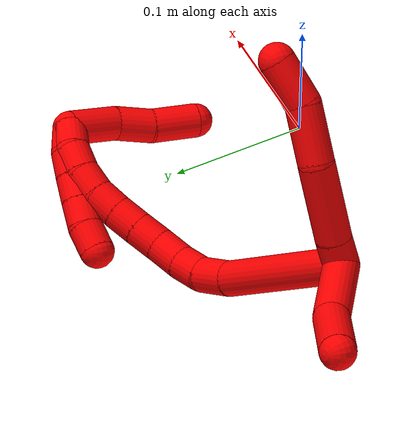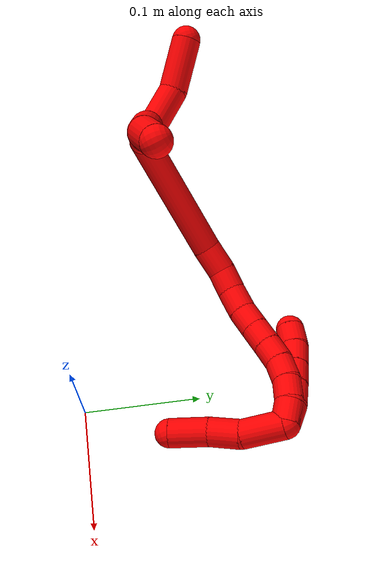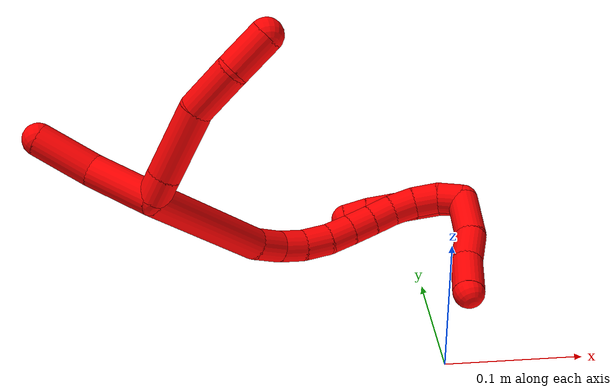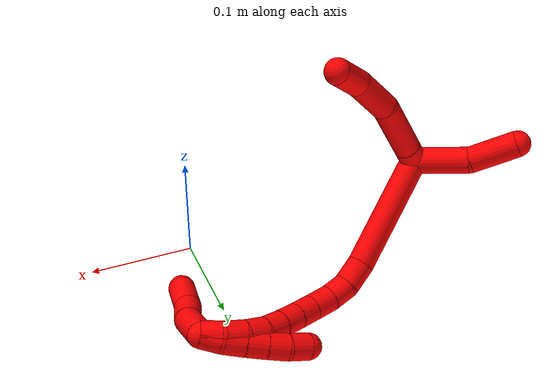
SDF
<sdf version="1.7">
 <world name="default">
  <model name="2">
   <static>0</static>
   <link name="2">
    <collision name="collision-cylinder-e_1_2_8">
     <pose>0.00959 0.001404 0.003354 -0.396489 1.20843 -0.275599</pose>
     <geometry><cylinder><radius>0.0125</radius><length>0.020512</length></cylinder></geometry>
     <surface>
      <friction><ode><mu>1.16</mu><mu2>1.16</mu2><slip1>0</slip1><slip2>0</slip2></ode></friction>
      <contact><ode><kp>1e+06</kp><kd>1</kd><max_vel>0</max_vel><min_depth>0.001</min_depth></ode></contact>
     </surface>
    </collision>
    <visual name="visual-cylinder-e_1_2_8">
     <pose>0.00959 0.001404 0.003354 -0.396489 1.20843 -0.275599</pose>
     <geometry><cylinder><radius>0.0125</radius><length>0.020512</length></cylinder></geometry>
     <material><ambient>1 0 0 1</ambient></material>
    </visual>
    <collision name="collision-cylinder-e_2_8_9">
     <pose>0.046082 0.006068 0.014529 -0.394901 1.26565 -0.291386</pose>
     <geometry><cylinder><radius>0.0125</radius><length>0.05641</length></cylinder></geometry>
     <surface>
      <friction><ode><mu>1.16</mu><mu2>1.16</mu2><slip1>0</slip1><slip2>0</slip2></ode></friction>
      <contact><ode><kp>1e+06</kp><kd>1</kd><max_vel>0</max_vel><min_depth>0.001</min_depth></ode></contact>
     </surface>
    </collision>
    <visual name="visual-cylinder-e_2_8_9">
     <pose>0.046082 0.006068 0.014529 -0.394901 1.26565 -0.291386</pose>
     <geometry><cylinder><radius>0.0125</radius><length>0.05641</length></cylinder></geometry>
     <material><ambient>1 0 0 1</ambient></material>
    </visual>
    <collision name="collision-cylinder-e_3_9_10">
     <pose>0.091816 0.015763 0.024302 -1.27629 1.22783 -0.963281</pose>
     <geometry><cylinder><radius>0.0125</radius><length>0.039993</length></cylinder></geometry>
     <surface>
      <friction><ode><mu>1.16</mu><mu2>1.16</mu2><slip1>0</slip1><slip2>0</slip2></ode></friction>
      <contact><ode><kp>1e+06</kp><kd>1</kd><max_vel>0</max_vel><min_depth>0.001</min_depth></ode></contact>
     </surface>
    </collision>
    <visual name="visual-cylinder-e_3_9_10">
     <pose>0.091816 0.015763 0.024302 -1.27629 1.22783 -0.963281</pose>
     <geometry><cylinder><radius>0.0125</radius><length>0.039993</length></cylinder></geometry>
     <material><ambient>1 0 0 1</ambient></material>
    </visual>
    <collision name="collision-cylinder-e_4_10_6">
     <pose>0.123912 0.030443 0.031707 -0.98643 0.930302 -0.527001</pose>
     <geometry><cylinder><radius>0.0125</radius><length>0.033084</length></cylinder></geometry>
     <surface>
      <friction><ode><mu>1.16</mu><mu2>1.16</mu2><slip1>0</slip1><slip2>0</slip2></ode></friction>
      <contact><ode><kp>1e+06</kp><kd>1</kd><max_vel>0</max_vel><min_depth>0.001</min_depth></ode></contact>
     </surface>
    </collision>
    <visual name="visual-cylinder-e_4_10_6">
     <pose>0.123912 0.030443 0.031707 -0.98643 0.930302 -0.527001</pose>
     <geometry><cylinder><radius>0.0125</radius><length>0.033084</length></cylinder></geometry>
     <material><ambient>1 0 0 1</ambient></material>
    </visual>
    <collision name="collision-cylinder-e_1_2_11">
     <pose>-0.009032 -0.016464 0.019003 0.713932 -0.344864 -0.129722</pose>
     <geometry><cylinder><radius>0.0125</radius><length>0.053431</length></cylinder></geometry>
     <surface>
      <friction><ode><mu>1.16</mu><mu2>1.16</mu2><slip1>0</slip1><slip2>0</slip2></ode></friction>
      <contact><ode><kp>1e+06</kp><kd>1</kd><max_vel>0</max_vel><min_depth>0.001</min_depth></ode></contact>
     </surface>
    </collision>
    <visual name="visual-cylinder-e_1_2_11">
     <pose>-0.009032 -0.016464 0.019003 0.713932 -0.344864 -0.129722</pose>
     <geometry><cylinder><radius>0.0125</radius><length>0.053431</length></cylinder></geometry>
     <material><ambient>1 0 0 1</ambient></material>
    </visual>
    <collision name="collision-cylinder-e_2_11_5">
     <pose>-0.020012 -0.051289 0.05219 0.913032 -0.083775 -0.041161</pose>
     <geometry><cylinder><radius>0.0125</radius><length>0.046569</length></cylinder></geometry>
     <surface>
      <friction><ode><mu>1.16</mu><mu2>1.16</mu2><slip1>0</slip1><slip2>0</slip2></ode></friction>
      <contact><ode><kp>1e+06</kp><kd>1</kd><max_vel>0</max_vel><min_depth>0.001</min_depth></ode></contact>
     </surface>
    </collision>
    <visual name="visual-cylinder-e_2_11_5">
     <pose>-0.020012 -0.051289 0.05219 0.913032 -0.083775 -0.041161</pose>
     <geometry><cylinder><radius>0.0125</radius><length>0.046569</length></cylinder></geometry>
     <material><ambient>1 0 0 1</ambient></material>
    </visual>
    <collision name="collision-cylinder-e_1_2_12">
     <pose>-0.021987 0.051128 0.002332 -1.52523 -0.405757 0.388135</pose>
     <geometry><cylinder><radius>0.0125</radius><length>0.111407</length></cylinder></geometry>
     <surface>
      <friction><ode><mu>1.16</mu><mu2>1.16</mu2><slip1>0</slip1><slip2>0</slip2></ode></friction>
      <contact><ode><kp>1e+06</kp><kd>1</kd><max_vel>0</max_vel><min_depth>0.001</min_depth></ode></contact>
     </surface>
    </collision>
    <visual name="visual-cylinder-e_1_2_12">
     <pose>-0.021987 0.051128 0.002332 -1.52523 -0.405757 0.388135</pose>
     <geometry><cylinder><radius>0.0125</radius><length>0.111407</length></cylinder></geometry>
     <material><ambient>1 0 0 1</ambient></material>
    </visual>
    <collision name="collision-cylinder-e_2_12_13">
     <pose>-0.046345 0.114649 0.006424 -1.4297 -0.187147 0.16256</pose>
     <geometry><cylinder><radius>0.0125</radius><length>0.025482</length></cylinder></geometry>
     <surface>
      <friction><ode><mu>1.16</mu><mu2>1.16</mu2><slip1>0</slip1><slip2>0</slip2></ode></friction>
      <contact><ode><kp>1e+06</kp><kd>1</kd><max_vel>0</max_vel><min_depth>0.001</min_depth></ode></contact>
     </surface>
    </collision>
    <visual name="visual-cylinder-e_2_12_13">
     <pose>-0.046345 0.114649 0.006424 -1.4297 -0.187147 0.16256</pose>
     <geometry><cylinder><radius>0.0125</radius><length>0.025482</length></cylinder></geometry>
     <material><ambient>1 0 0 1</ambient></material>
    </visual>
    <collision name="collision-cylinder-e_3_13_14">
     <pose>-0.047493 0.137297 0.008846 -1.5063 0.118411 -0.111026</pose>
     <geometry><cylinder><radius>0.0125</radius><length>0.020694</length></cylinder></geometry>
     <surface>
      <friction><ode><mu>1.16</mu><mu2>1.16</mu2><slip1>0</slip1><slip2>0</slip2></ode></friction>
      <contact><ode><kp>1e+06</kp><kd>1</kd><max_vel>0</max_vel><min_depth>0.001</min_depth></ode></contact>
     </surface>
    </collision>
    <visual name="visual-cylinder-e_3_13_14">
     <pose>-0.047493 0.137297 0.008846 -1.5063 0.118411 -0.111026</pose>
     <geometry><cylinder><radius>0.0125</radius><length>0.020694</length></cylinder></geometry>
     <material><ambient>1 0 0 1</ambient></material>
    </visual>
    <collision name="collision-cylinder-e_4_14_15">
     <pose>-0.042872 0.158073 0.011078 -1.42277 0.309175 -0.267035</pose>
     <geometry><cylinder><radius>0.0125</radius><length>0.022338</length></cylinder></geometry>
     <surface>
      <friction><ode><mu>1.16</mu><mu2>1.16</mu2><slip1>0</slip1><slip2>0</slip2></ode></friction>
      <contact><ode><kp>1e+06</kp><kd>1</kd><max_vel>0</max_vel><min_depth>0.001</min_depth></ode></contact>
     </surface>
    </collision>
    <visual name="visual-cylinder-e_4_14_15">
     <pose>-0.042872 0.158073 0.011078 -1.42277 0.309175 -0.267035</pose>
     <geometry><cylinder><radius>0.0125</radius><length>0.022338</length></cylinder></geometry>
     <material><ambient>1 0 0 1</ambient></material>
    </visual>
    <collision name="collision-cylinder-e_5_15_16">
     <pose>-0.035694 0.177477 0.015394 -1.27079 0.386194 -0.286402</pose>
     <geometry><cylinder><radius>0.0125</radius><length>0.02007</length></cylinder></geometry>
     <surface>
      <friction><ode><mu>1.16</mu><mu2>1.16</mu2><slip1>0</slip1><slip2>0</slip2></ode></friction>
      <contact><ode><kp>1e+06</kp><kd>1</kd><max_vel>0</max_vel><min_depth>0.001</min_depth></ode></contact>
     </surface>
    </collision>
    <visual name="visual-cylinder-e_5_15_16">
     <pose>-0.035694 0.177477 0.015394 -1.27079 0.386194 -0.286402</pose>
     <geometry><cylinder><radius>0.0125</radius><length>0.02007</length></cylinder></geometry>
     <material><ambient>1 0 0 1</ambient></material>
    </visual>
    <collision name="collision-cylinder-e_6_16_17">
     <pose>-0.027865 0.195066 0.020935 -1.2604 0.416826 -0.306108</pose>
     <geometry><cylinder><radius>0.0125</radius><length>0.020004</length></cylinder></geometry>
     <surface>
      <friction><ode><mu>1.16</mu><mu2>1.16</mu2><slip1>0</slip1><slip2>0</slip2></ode></friction>
      <contact><ode><kp>1e+06</kp><kd>1</kd><max_vel>0</max_vel><min_depth>0.001</min_depth></ode></contact>
     </surface>
    </collision>
    <visual name="visual-cylinder-e_6_16_17">
     <pose>-0.027865 0.195066 0.020935 -1.2604 0.416826 -0.306108</pose>
     <geometry><cylinder><radius>0.0125</radius><length>0.020004</length></cylinder></geometry>
     <material><ambient>1 0 0 1</ambient></material>
    </visual>
    <collision name="collision-cylinder-e_7_17_18">
     <pose>-0.019252 0.212266 0.026393 -1.26673 0.47379 -0.350906</pose>
     <geometry><cylinder><radius>0.0125</radius><length>0.020003</length></cylinder></geometry>
     <surface>
      <friction><ode><mu>1.16</mu><mu2>1.16</mu2><slip1>0</slip1><slip2>0</slip2></ode></friction>
      <contact><ode><kp>1e+06</kp><kd>1</kd><max_vel>0</max_vel><min_depth>0.001</min_depth></ode></contact>
     </surface>
    </collision>
    <visual name="visual-cylinder-e_7_17_18">
     <pose>-0.019252 0.212266 0.026393 -1.26673 0.47379 -0.350906</pose>
     <geometry><cylinder><radius>0.0125</radius><length>0.020003</length></cylinder></geometry>
     <material><ambient>1 0 0 1</ambient></material>
    </visual>
    <collision name="collision-cylinder-e_8_18_19">
     <pose>-0.00899 0.228943 0.029791 -1.48142 0.606324 -0.557174</pose>
     <geometry><cylinder><radius>0.0125</radius><length>0.020001</length></cylinder></geometry>
     <surface>
      <friction><ode><mu>1.16</mu><mu2>1.16</mu2><slip1>0</slip1><slip2>0</slip2></ode></friction>
      <contact><ode><kp>1e+06</kp><kd>1</kd><max_vel>0</max_vel><min_depth>0.001</min_depth></ode></contact>
     </surface>
    </collision>
    <visual name="visual-cylinder-e_8_18_19">
     <pose>-0.00899 0.228943 0.029791 -1.48142 0.606324 -0.557174</pose>
     <geometry><cylinder><radius>0.0125</radius><length>0.020001</length></cylinder></geometry>
     <material><ambient>1 0 0 1</ambient></material>
    </visual>
    <collision name="collision-cylinder-e_9_19_20">
     <pose>0.002666 0.245012 0.028988 -1.76323 0.638082 -0.762563</pose>
     <geometry><cylinder><radius>0.0125</radius><length>0.02</length></cylinder></geometry>
     <surface>
      <friction><ode><mu>1.16</mu><mu2>1.16</mu2><slip1>0</slip1><slip2>0</slip2></ode></friction>
      <contact><ode><kp>1e+06</kp><kd>1</kd><max_vel>0</max_vel><min_depth>0.001</min_depth></ode></contact>
     </surface>
    </collision>
    <visual name="visual-cylinder-e_9_19_20">
     <pose>0.002666 0.245012 0.028988 -1.76323 0.638082 -0.762563</pose>
     <geometry><cylinder><radius>0.0125</radius><length>0.02</length></cylinder></geometry>
     <material><ambient>1 0 0 1</ambient></material>
    </visual>
    <collision name="collision-cylinder-e_10_20_1">
     <pose>0.013742 0.260304 0.023103 -2.10167 0.537514 -0.896787</pose>
     <geometry><cylinder><radius>0.0125</radius><length>0.02</length></cylinder></geometry>
     <surface>
      <friction><ode><mu>1.16</mu><mu2>1.16</mu2><slip1>0</slip1><slip2>0</slip2></ode></friction>
      <contact><ode><kp>1e+06</kp><kd>1</kd><max_vel>0</max_vel><min_depth>0.001</min_depth></ode></contact>
     </surface>
    </collision>
    <visual name="visual-cylinder-e_10_20_1">
     <pose>0.013742 0.260304 0.023103 -2.10167 0.537514 -0.896787</pose>
     <geometry><cylinder><radius>0.0125</radius><length>0.02</length></cylinder></geometry>
     <material><ambient>1 0 0 1</ambient></material>
    </visual>
    <collision name="collision-cylinder-e_1_1_21">
     <pose>0.012045 0.26207 0.023413 0.880614 -0.750079 -0.366794</pose>
     <geometry><cylinder><radius>0.0125</radius><length>0.02</length></cylinder></geometry>
     <surface>
      <friction><ode><mu>1.16</mu><mu2>1.16</mu2><slip1>0</slip1><slip2>0</slip2></ode></friction>
      <contact><ode><kp>1e+06</kp><kd>1</kd><max_vel>0</max_vel><min_depth>0.001</min_depth></ode></contact>
     </surface>
    </collision>
    <visual name="visual-cylinder-e_1_1_21">
     <pose>0.012045 0.26207 0.023413 0.880614 -0.750079 -0.366794</pose>
     <geometry><cylinder><radius>0.0125</radius><length>0.02</length></cylinder></geometry>
     <material><ambient>1 0 0 1</ambient></material>
    </visual>
    <collision name="collision-cylinder-e_2_21_22">
     <pose>-0.001667 0.249689 0.030724 1.19573 -0.76081 -0.531752</pose>
     <geometry><cylinder><radius>0.0125</radius><length>0.02</length></cylinder></geometry>
     <surface>
      <friction><ode><mu>1.16</mu><mu2>1.16</mu2><slip1>0</slip1><slip2>0</slip2></ode></friction>
      <contact><ode><kp>1e+06</kp><kd>1</kd><max_vel>0</max_vel><min_depth>0.001</min_depth></ode></contact>
     </surface>
    </collision>
    <visual name="visual-cylinder-e_2_21_22">
     <pose>-0.001667 0.249689 0.030724 1.19573 -0.76081 -0.531752</pose>
     <geometry><cylinder><radius>0.0125</radius><length>0.02</length></cylinder></geometry>
     <material><ambient>1 0 0 1</ambient></material>
    </visual>
    <collision name="collision-cylinder-e_3_22_23">
     <pose>-0.015352 0.236025 0.035817 1.23202 -0.746422 -0.540797</pose>
     <geometry><cylinder><radius>0.0125</radius><length>0.02</length></cylinder></geometry>
     <surface>
      <friction><ode><mu>1.16</mu><mu2>1.16</mu2><slip1>0</slip1><slip2>0</slip2></ode></friction>
      <contact><ode><kp>1e+06</kp><kd>1</kd><max_vel>0</max_vel><min_depth>0.001</min_depth></ode></contact>
     </surface>
    </collision>
    <visual name="visual-cylinder-e_3_22_23">
     <pose>-0.015352 0.236025 0.035817 1.23202 -0.746422 -0.540797</pose>
     <geometry><cylinder><radius>0.0125</radius><length>0.02</length></cylinder></geometry>
     <material><ambient>1 0 0 1</ambient></material>
    </visual>
    <collision name="collision-cylinder-e_4_23_24">
     <pose>-0.028785 0.22201 0.040617 1.24947 -0.726574 -0.53511</pose>
     <geometry><cylinder><radius>0.0125</radius><length>0.02</length></cylinder></geometry>
     <surface>
      <friction><ode><mu>1.16</mu><mu2>1.16</mu2><slip1>0</slip1><slip2>0</slip2></ode></friction>
      <contact><ode><kp>1e+06</kp><kd>1</kd><max_vel>0</max_vel><min_depth>0.001</min_depth></ode></contact>
     </surface>
    </collision>
    <visual name="visual-cylinder-e_4_23_24">
     <pose>-0.028785 0.22201 0.040617 1.24947 -0.726574 -0.53511</pose>
     <geometry><cylinder><radius>0.0125</radius><length>0.02</length></cylinder></geometry>
     <material><ambient>1 0 0 1</ambient></material>
    </visual>
    <collision name="collision-cylinder-e_5_24_4">
     <pose>-0.041804 0.20723 0.043478 1.50588 -0.691333 -0.650943</pose>
     <geometry><cylinder><radius>0.0125</radius><length>0.02</length></cylinder></geometry>
     <surface>
      <friction><ode><mu>1.16</mu><mu2>1.16</mu2><slip1>0</slip1><slip2>0</slip2></ode></friction>
      <contact><ode><kp>1e+06</kp><kd>1</kd><max_vel>0</max_vel><min_depth>0.001</min_depth></ode></contact>
     </surface>
    </collision>
    <visual name="visual-cylinder-e_5_24_4">
     <pose>-0.041804 0.20723 0.043478 1.50588 -0.691333 -0.650943</pose>
     <geometry><cylinder><radius>0.0125</radius><length>0.02</length></cylinder></geometry>
     <material><ambient>1 0 0 1</ambient></material>
    </visual>
    <collision name="collision-cylinder-e_1_1_25">
     <pose>0.018401 0.26491 0.000105 2.99246 -0.024437 -0.324244</pose>
     <geometry><cylinder><radius>0.0125</radius><length>0.03773</length></cylinder></geometry>
     <surface>
      <friction><ode><mu>1.16</mu><mu2>1.16</mu2><slip1>0</slip1><slip2>0</slip2></ode></friction>
      <contact><ode><kp>1e+06</kp><kd>1</kd><max_vel>0</max_vel><min_depth>0.001</min_depth></ode></contact>
     </surface>
    </collision>
    <visual name="visual-cylinder-e_1_1_25">
     <pose>0.018401 0.26491 0.000105 2.99246 -0.024437 -0.324244</pose>
     <geometry><cylinder><radius>0.0125</radius><length>0.03773</length></cylinder></geometry>
     <material><ambient>1 0 0 1</ambient></material>
    </visual>
    <collision name="collision-cylinder-e_2_25_26">
     <pose>0.016466 0.256255 -0.031208 2.70867 -0.10528 -0.470326</pose>
     <geometry><cylinder><radius>0.0125</radius><length>0.028055</length></cylinder></geometry>
     <surface>
      <friction><ode><mu>1.16</mu><mu2>1.16</mu2><slip1>0</slip1><slip2>0</slip2></ode></friction>
      <contact><ode><kp>1e+06</kp><kd>1</kd><max_vel>0</max_vel><min_depth>0.001</min_depth></ode></contact>
     </surface>
    </collision>
    <visual name="visual-cylinder-e_2_25_26">
     <pose>0.016466 0.256255 -0.031208 2.70867 -0.10528 -0.470326</pose>
     <geometry><cylinder><radius>0.0125</radius><length>0.028055</length></cylinder></geometry>
     <material><ambient>1 0 0 1</ambient></material>
    </visual>
    <collision name="collision-cylinder-e_3_26_3">
     <pose>0.016266 0.244469 -0.059866 2.78634 0.074507 0.409414</pose>
     <geometry><cylinder><radius>0.0125</radius><length>0.034215</length></cylinder></geometry>
     <surface>
      <friction><ode><mu>1.16</mu><mu2>1.16</mu2><slip1>0</slip1><slip2>0</slip2></ode></friction>
      <contact><ode><kp>1e+06</kp><kd>1</kd><max_vel>0</max_vel><min_depth>0.001</min_depth></ode></contact>
     </surface>
    </collision>
    <visual name="visual-cylinder-e_3_26_3">
     <pose>0.016266 0.244469 -0.059866 2.78634 0.074507 0.409414</pose>
     <geometry><cylinder><radius>0.0125</radius><length>0.034215</length></cylinder></geometry>
     <material><ambient>1 0 0 1</ambient></material>
    </visual>
    <collision name="collision-sphere-3">
     <pose>0.017539 0.238535 -0.075861 0 -0 0</pose>
     <geometry><sphere><radius>0.0125</radius></sphere></geometry>
     <surface>
      <friction><ode><mu>1.16</mu><mu2>1.16</mu2><slip1>0</slip1><slip2>0</slip2></ode></friction>
      <contact><ode><kp>1e+06</kp><kd>1</kd><max_vel>0</max_vel><min_depth>0.001</min_depth></ode></contact>
     </surface>
    </collision>
    <visual name="visual-sphere-3">
     <pose>0.017539 0.238535 -0.075861 0 -0 0</pose>
     <geometry><sphere><radius>0.0125</radius></sphere></geometry>
     <material><ambient>1 0 0 1</ambient></material>
    </visual>
    <collision name="collision-sphere-26">
     <pose>0.014992 0.250403 -0.043871 0 -0 0</pose>
     <geometry><sphere><radius>0.0125</radius></sphere></geometry>
     <surface>
      <friction><ode><mu>1.16</mu><mu2>1.16</mu2><slip1>0</slip1><slip2>0</slip2></ode></friction>
      <contact><ode><kp>1e+06</kp><kd>1</kd><max_vel>0</max_vel><min_depth>0.001</min_depth></ode></contact>
     </surface>
    </collision>
    <visual name="visual-sphere-26">
     <pose>0.014992 0.250403 -0.043871 0 -0 0</pose>
     <geometry><sphere><radius>0.0125</radius></sphere></geometry>
     <material><ambient>1 0 0 1</ambient></material>
    </visual>
    <collision name="collision-sphere-25">
     <pose>0.017941 0.262107 -0.018545 0 -0 0</pose>
     <geometry><sphere><radius>0.0125</radius></sphere></geometry>
     <surface>
      <friction><ode><mu>1.16</mu><mu2>1.16</mu2><slip1>0</slip1><slip2>0</slip2></ode></friction>
      <contact><ode><kp>1e+06</kp><kd>1</kd><max_vel>0</max_vel><min_depth>0.001</min_depth></ode></contact>
     </surface>
    </collision>
    <visual name="visual-sphere-25">
     <pose>0.017941 0.262107 -0.018545 0 -0 0</pose>
     <geometry><sphere><radius>0.0125</radius></sphere></geometry>
     <material><ambient>1 0 0 1</ambient></material>
    </visual>
    <collision name="collision-sphere-4">
     <pose>-0.04818 0.199542 0.043978 0 -0 0</pose>
     <geometry><sphere><radius>0.0125</radius></sphere></geometry>
     <surface>
      <friction><ode><mu>1.16</mu><mu2>1.16</mu2><slip1>0</slip1><slip2>0</slip2></ode></friction>
      <contact><ode><kp>1e+06</kp><kd>1</kd><max_vel>0</max_vel><min_depth>0.001</min_depth></ode></contact>
     </surface>
    </collision>
    <visual name="visual-sphere-4">
     <pose>-0.04818 0.199542 0.043978 0 -0 0</pose>
     <geometry><sphere><radius>0.0125</radius></sphere></geometry>
     <material><ambient>1 0 0 1</ambient></material>
    </visual>
    <collision name="collision-sphere-24">
     <pose>-0.035428 0.214918 0.042978 0 -0 0</pose>
     <geometry><sphere><radius>0.0125</radius></sphere></geometry>
     <surface>
      <friction><ode><mu>1.16</mu><mu2>1.16</mu2><slip1>0</slip1><slip2>0</slip2></ode></friction>
      <contact><ode><kp>1e+06</kp><kd>1</kd><max_vel>0</max_vel><min_depth>0.001</min_depth></ode></contact>
     </surface>
    </collision>
    <visual name="visual-sphere-24">
     <pose>-0.035428 0.214918 0.042978 0 -0 0</pose>
     <geometry><sphere><radius>0.0125</radius></sphere></geometry>
     <material><ambient>1 0 0 1</ambient></material>
    </visual>
    <collision name="collision-sphere-23">
     <pose>-0.022142 0.229101 0.038257 0 -0 0</pose>
     <geometry><sphere><radius>0.0125</radius></sphere></geometry>
     <surface>
      <friction><ode><mu>1.16</mu><mu2>1.16</mu2><slip1>0</slip1><slip2>0</slip2></ode></friction>
      <contact><ode><kp>1e+06</kp><kd>1</kd><max_vel>0</max_vel><min_depth>0.001</min_depth></ode></contact>
     </surface>
    </collision>
    <visual name="visual-sphere-23">
     <pose>-0.022142 0.229101 0.038257 0 -0 0</pose>
     <geometry><sphere><radius>0.0125</radius></sphere></geometry>
     <material><ambient>1 0 0 1</ambient></material>
    </visual>
    <collision name="collision-sphere-22">
     <pose>-0.008562 0.242949 0.033377 0 -0 0</pose>
     <geometry><sphere><radius>0.0125</radius></sphere></geometry>
     <surface>
      <friction><ode><mu>1.16</mu><mu2>1.16</mu2><slip1>0</slip1><slip2>0</slip2></ode></friction>
      <contact><ode><kp>1e+06</kp><kd>1</kd><max_vel>0</max_vel><min_depth>0.001</min_depth></ode></contact>
     </surface>
    </collision>
    <visual name="visual-sphere-22">
     <pose>-0.008562 0.242949 0.033377 0 -0 0</pose>
     <geometry><sphere><radius>0.0125</radius></sphere></geometry>
     <material><ambient>1 0 0 1</ambient></material>
    </visual>
    <collision name="collision-sphere-21">
     <pose>0.005229 0.256428 0.028071 0 -0 0</pose>
     <geometry><sphere><radius>0.0125</radius></sphere></geometry>
     <surface>
      <friction><ode><mu>1.16</mu><mu2>1.16</mu2><slip1>0</slip1><slip2>0</slip2></ode></friction>
      <contact><ode><kp>1e+06</kp><kd>1</kd><max_vel>0</max_vel><min_depth>0.001</min_depth></ode></contact>
     </surface>
    </collision>
    <visual name="visual-sphere-21">
     <pose>0.005229 0.256428 0.028071 0 -0 0</pose>
     <geometry><sphere><radius>0.0125</radius></sphere></geometry>
     <material><ambient>1 0 0 1</ambient></material>
    </visual>
    <collision name="collision-sphere-1">
     <pose>0.018862 0.267712 0.018754 0 -0 0</pose>
     <geometry><sphere><radius>0.0125</radius></sphere></geometry>
     <surface>
      <friction><ode><mu>1.16</mu><mu2>1.16</mu2><slip1>0</slip1><slip2>0</slip2></ode></friction>
      <contact><ode><kp>1e+06</kp><kd>1</kd><max_vel>0</max_vel><min_depth>0.001</min_depth></ode></contact>
     </surface>
    </collision>
    <visual name="visual-sphere-1">
     <pose>0.018862 0.267712 0.018754 0 -0 0</pose>
     <geometry><sphere><radius>0.0125</radius></sphere></geometry>
     <material><ambient>1 0 0 1</ambient></material>
    </visual>
    <collision name="collision-sphere-11">
     <pose>-0.018063 -0.032927 0.038005 0 -0 0</pose>
     <geometry><sphere><radius>0.0125</radius></sphere></geometry>
     <surface>
      <friction><ode><mu>1.16</mu><mu2>1.16</mu2><slip1>0</slip1><slip2>0</slip2></ode></friction>
      <contact><ode><kp>1e+06</kp><kd>1</kd><max_vel>0</max_vel><min_depth>0.001</min_depth></ode></contact>
     </surface>
    </collision>
    <visual name="visual-sphere-11">
     <pose>-0.018063 -0.032927 0.038005 0 -0 0</pose>
     <geometry><sphere><radius>0.0125</radius></sphere></geometry>
     <material><ambient>1 0 0 1</ambient></material>
    </visual>
    <collision name="collision-sphere-6">
     <pose>0.137176 0.038688 0.037161 0 -0 0</pose>
     <geometry><sphere><radius>0.0125</radius></sphere></geometry>
     <surface>
      <friction><ode><mu>1.16</mu><mu2>1.16</mu2><slip1>0</slip1><slip2>0</slip2></ode></friction>
      <contact><ode><kp>1e+06</kp><kd>1</kd><max_vel>0</max_vel><min_depth>0.001</min_depth></ode></contact>
     </surface>
    </collision>
    <visual name="visual-sphere-6">
     <pose>0.137176 0.038688 0.037161 0 -0 0</pose>
     <geometry><sphere><radius>0.0125</radius></sphere></geometry>
     <material><ambient>1 0 0 1</ambient></material>
    </visual>
    <collision name="collision-sphere-10">
     <pose>0.110648 0.022198 0.026254 0 -0 0</pose>
     <geometry><sphere><radius>0.0125</radius></sphere></geometry>
     <surface>
      <friction><ode><mu>1.16</mu><mu2>1.16</mu2><slip1>0</slip1><slip2>0</slip2></ode></friction>
      <contact><ode><kp>1e+06</kp><kd>1</kd><max_vel>0</max_vel><min_depth>0.001</min_depth></ode></contact>
     </surface>
    </collision>
    <visual name="visual-sphere-10">
     <pose>0.110648 0.022198 0.026254 0 -0 0</pose>
     <geometry><sphere><radius>0.0125</radius></sphere></geometry>
     <material><ambient>1 0 0 1</ambient></material>
    </visual>
    <collision name="collision-sphere-9">
     <pose>0.072984 0.009328 0.02235 0 -0 0</pose>
     <geometry><sphere><radius>0.0125</radius></sphere></geometry>
     <surface>
      <friction><ode><mu>1.16</mu><mu2>1.16</mu2><slip1>0</slip1><slip2>0</slip2></ode></friction>
      <contact><ode><kp>1e+06</kp><kd>1</kd><max_vel>0</max_vel><min_depth>0.001</min_depth></ode></contact>
     </surface>
    </collision>
    <visual name="visual-sphere-9">
     <pose>0.072984 0.009328 0.02235 0 -0 0</pose>
     <geometry><sphere><radius>0.0125</radius></sphere></geometry>
     <material><ambient>1 0 0 1</ambient></material>
    </visual>
    <collision name="collision-sphere-2">
     <geometry><sphere><radius>0.0125</radius></sphere></geometry>
     <surface>
      <friction><ode><mu>1.16</mu><mu2>1.16</mu2><slip1>0</slip1><slip2>0</slip2></ode></friction>
      <contact><ode><kp>1e+06</kp><kd>1</kd><max_vel>0</max_vel><min_depth>0.001</min_depth></ode></contact>
     </surface>
    </collision>
    <visual name="visual-sphere-2">
     <geometry><sphere><radius>0.0125</radius></sphere></geometry>
     <material><ambient>1 0 0 1</ambient></material>
    </visual>
    <collision name="collision-sphere-19">
     <pose>-0.003291 0.237128 0.030525 0 -0 0</pose>
     <geometry><sphere><radius>0.0125</radius></sphere></geometry>
     <surface>
      <friction><ode><mu>1.16</mu><mu2>1.16</mu2><slip1>0</slip1><slip2>0</slip2></ode></friction>
      <contact><ode><kp>1e+06</kp><kd>1</kd><max_vel>0</max_vel><min_depth>0.001</min_depth></ode></contact>
     </surface>
    </collision>
    <visual name="visual-sphere-19">
     <pose>-0.003291 0.237128 0.030525 0 -0 0</pose>
     <geometry><sphere><radius>0.0125</radius></sphere></geometry>
     <material><ambient>1 0 0 1</ambient></material>
    </visual>
    <collision name="collision-sphere-8">
     <pose>0.01918 0.002808 0.006707 0 -0 0</pose>
     <geometry><sphere><radius>0.0125</radius></sphere></geometry>
     <surface>
      <friction><ode><mu>1.16</mu><mu2>1.16</mu2><slip1>0</slip1><slip2>0</slip2></ode></friction>
      <contact><ode><kp>1e+06</kp><kd>1</kd><max_vel>0</max_vel><min_depth>0.001</min_depth></ode></contact>
     </surface>
    </collision>
    <visual name="visual-sphere-8">
     <pose>0.01918 0.002808 0.006707 0 -0 0</pose>
     <geometry><sphere><radius>0.0125</radius></sphere></geometry>
     <material><ambient>1 0 0 1</ambient></material>
    </visual>
    <collision name="collision-sphere-5">
     <pose>-0.02196 -0.069651 0.066375 0 -0 0</pose>
     <geometry><sphere><radius>0.0125</radius></sphere></geometry>
     <surface>
      <friction><ode><mu>1.16</mu><mu2>1.16</mu2><slip1>0</slip1><slip2>0</slip2></ode></friction>
      <contact><ode><kp>1e+06</kp><kd>1</kd><max_vel>0</max_vel><min_depth>0.001</min_depth></ode></contact>
     </surface>
    </collision>
    <visual name="visual-sphere-5">
     <pose>-0.02196 -0.069651 0.066375 0 -0 0</pose>
     <geometry><sphere><radius>0.0125</radius></sphere></geometry>
     <material><ambient>1 0 0 1</ambient></material>
    </visual>
    <collision name="collision-sphere-12">
     <pose>-0.043974 0.102255 0.004663 0 -0 0</pose>
     <geometry><sphere><radius>0.0125</radius></sphere></geometry>
     <surface>
      <friction><ode><mu>1.16</mu><mu2>1.16</mu2><slip1>0</slip1><slip2>0</slip2></ode></friction>
      <contact><ode><kp>1e+06</kp><kd>1</kd><max_vel>0</max_vel><min_depth>0.001</min_depth></ode></contact>
     </surface>
    </collision>
    <visual name="visual-sphere-12">
     <pose>-0.043974 0.102255 0.004663 0 -0 0</pose>
     <geometry><sphere><radius>0.0125</radius></sphere></geometry>
     <material><ambient>1 0 0 1</ambient></material>
    </visual>
    <collision name="collision-sphere-13">
     <pose>-0.048715 0.127044 0.008184 0 -0 0</pose>
     <geometry><sphere><radius>0.0125</radius></sphere></geometry>
     <surface>
      <friction><ode><mu>1.16</mu><mu2>1.16</mu2><slip1>0</slip1><slip2>0</slip2></ode></friction>
      <contact><ode><kp>1e+06</kp><kd>1</kd><max_vel>0</max_vel><min_depth>0.001</min_depth></ode></contact>
     </surface>
    </collision>
    <visual name="visual-sphere-13">
     <pose>-0.048715 0.127044 0.008184 0 -0 0</pose>
     <geometry><sphere><radius>0.0125</radius></sphere></geometry>
     <material><ambient>1 0 0 1</ambient></material>
    </visual>
    <collision name="collision-sphere-14">
     <pose>-0.046271 0.14755 0.009509 0 -0 0</pose>
     <geometry><sphere><radius>0.0125</radius></sphere></geometry>
     <surface>
      <friction><ode><mu>1.16</mu><mu2>1.16</mu2><slip1>0</slip1><slip2>0</slip2></ode></friction>
      <contact><ode><kp>1e+06</kp><kd>1</kd><max_vel>0</max_vel><min_depth>0.001</min_depth></ode></contact>
     </surface>
    </collision>
    <visual name="visual-sphere-14">
     <pose>-0.046271 0.14755 0.009509 0 -0 0</pose>
     <geometry><sphere><radius>0.0125</radius></sphere></geometry>
     <material><ambient>1 0 0 1</ambient></material>
    </visual>
    <collision name="collision-sphere-15">
     <pose>-0.039474 0.168596 0.012647 0 -0 0</pose>
     <geometry><sphere><radius>0.0125</radius></sphere></geometry>
     <surface>
      <friction><ode><mu>1.16</mu><mu2>1.16</mu2><slip1>0</slip1><slip2>0</slip2></ode></friction>
      <contact><ode><kp>1e+06</kp><kd>1</kd><max_vel>0</max_vel><min_depth>0.001</min_depth></ode></contact>
     </surface>
    </collision>
    <visual name="visual-sphere-15">
     <pose>-0.039474 0.168596 0.012647 0 -0 0</pose>
     <geometry><sphere><radius>0.0125</radius></sphere></geometry>
     <material><ambient>1 0 0 1</ambient></material>
    </visual>
    <collision name="collision-sphere-16">
     <pose>-0.031914 0.186358 0.018142 0 -0 0</pose>
     <geometry><sphere><radius>0.0125</radius></sphere></geometry>
     <surface>
      <friction><ode><mu>1.16</mu><mu2>1.16</mu2><slip1>0</slip1><slip2>0</slip2></ode></friction>
      <contact><ode><kp>1e+06</kp><kd>1</kd><max_vel>0</max_vel><min_depth>0.001</min_depth></ode></contact>
     </surface>
    </collision>
    <visual name="visual-sphere-16">
     <pose>-0.031914 0.186358 0.018142 0 -0 0</pose>
     <geometry><sphere><radius>0.0125</radius></sphere></geometry>
     <material><ambient>1 0 0 1</ambient></material>
    </visual>
    <collision name="collision-sphere-17">
     <pose>-0.023815 0.203775 0.023728 0 -0 0</pose>
     <geometry><sphere><radius>0.0125</radius></sphere></geometry>
     <surface>
      <friction><ode><mu>1.16</mu><mu2>1.16</mu2><slip1>0</slip1><slip2>0</slip2></ode></friction>
      <contact><ode><kp>1e+06</kp><kd>1</kd><max_vel>0</max_vel><min_depth>0.001</min_depth></ode></contact>
     </surface>
    </collision>
    <visual name="visual-sphere-17">
     <pose>-0.023815 0.203775 0.023728 0 -0 0</pose>
     <geometry><sphere><radius>0.0125</radius></sphere></geometry>
     <material><ambient>1 0 0 1</ambient></material>
    </visual>
    <collision name="collision-sphere-18">
     <pose>-0.014689 0.220758 0.029058 0 -0 0</pose>
     <geometry><sphere><radius>0.0125</radius></sphere></geometry>
     <surface>
      <friction><ode><mu>1.16</mu><mu2>1.16</mu2><slip1>0</slip1><slip2>0</slip2></ode></friction>
      <contact><ode><kp>1e+06</kp><kd>1</kd><max_vel>0</max_vel><min_depth>0.001</min_depth></ode></contact>
     </surface>
    </collision>
    <visual name="visual-sphere-18">
     <pose>-0.014689 0.220758 0.029058 0 -0 0</pose>
     <geometry><sphere><radius>0.0125</radius></sphere></geometry>
     <material><ambient>1 0 0 1</ambient></material>
    </visual>
    <collision name="collision-sphere-20">
     <pose>0.008622 0.252897 0.027452 0 -0 0</pose>
     <geometry><sphere><radius>0.0125</radius></sphere></geometry>
     <surface>
      <friction><ode><mu>1.16</mu><mu2>1.16</mu2><slip1>0</slip1><slip2>0</slip2></ode></friction>
      <contact><ode><kp>1e+06</kp><kd>1</kd><max_vel>0</max_vel><min_depth>0.001</min_depth></ode></contact>
     </surface>
    </collision>
    <visual name="visual-sphere-20">
     <pose>0.008622 0.252897 0.027452 0 -0 0</pose>
     <geometry><sphere><radius>0.0125</radius></sphere></geometry>
     <material><ambient>1 0 0 1</ambient></material>
    </visual>
    <inertial>
     <pose>0.003031 0.118953 0.014218 0 -0 0</pose>
     <mass>0.75</mass>
     <inertia>
      <ixx>0.000195</ixx>
      <ixy>0</ixy>
      <ixz>0</ixz>
      <iyy>0.000103</iyy>
      <iyz>0</iyz>
      <izz>-7.3e-05</izz>
     </inertia>
    </inertial>
   </link>
   <pose>-0.203236 0.077432 0.103266 -0.731051 -1.06006 -0.603654</pose>
  </model>
 </world>
</sdf>
